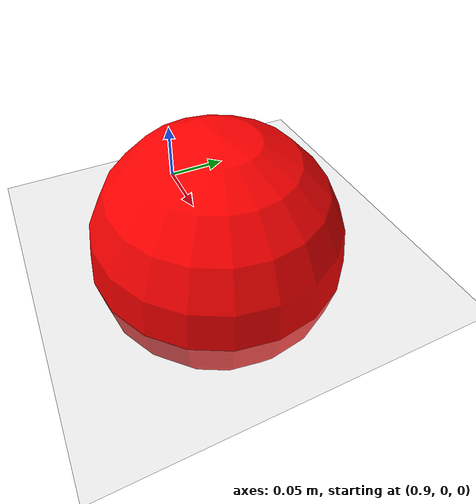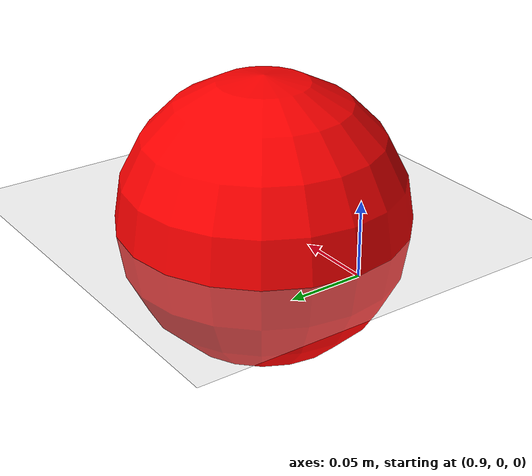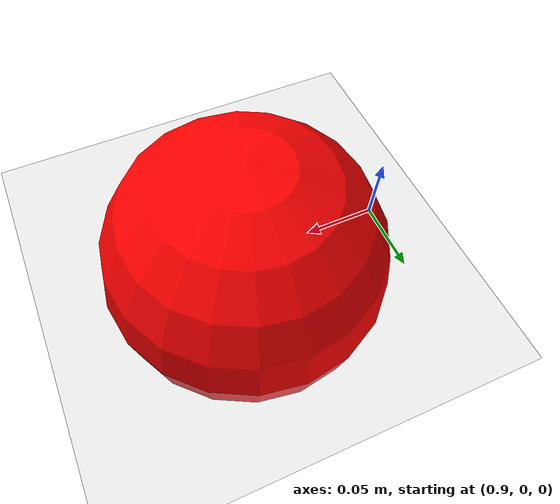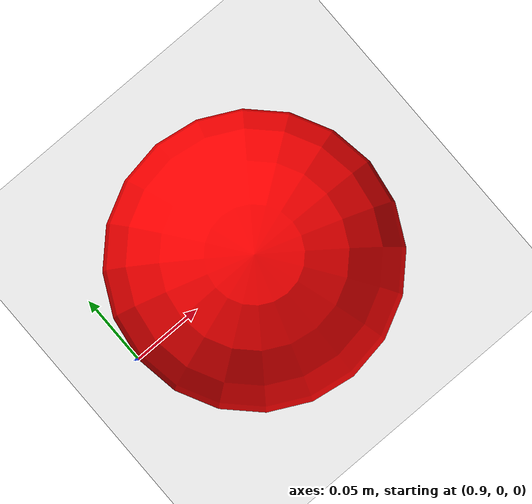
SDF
<?xml version="1.0"?>
<sdf version="1.8">
  <world name="basic">
    <physics name="1ms" type="ode">
      <max_step_size>0.001</max_step_size>
      <real_time_factor>1.0</real_time_factor>
    </physics>
    <plugin
      filename="gz-sim-physics-system"
      name="gz::sim::systems::Physics">
    </plugin>
    <plugin
      filename="gz-sim-user-commands-system"
      name="gz::sim::systems::UserCommands">
    </plugin>
    <plugin
      filename="gz-sim-scene-broadcaster-system"
      name="gz::sim::systems::SceneBroadcaster">
    </plugin>
    <plugin
      filename="gz-sim-contact-system"
      name="gz::sim::systems::Contact">
    </plugin>
    <plugin
      filename="gz-sim-imu-system"
      name="gz::sim::systems::Imu">
    </plugin>
    <plugin
      filename="gz-sim-air-pressure-system"
      name="gz::sim::systems::AirPressure">
    </plugin>
    <plugin
      filename="gz-sim-apply-link-wrench-system"
      name="gz::sim::systems::ApplyLinkWrench">
    </plugin>
    <plugin
      filename="gz-sim-navsat-system"
      name="gz::sim::systems::NavSat">
    </plugin>
    <plugin
      filename="gz-sim-sensors-system"
      name="gz::sim::systems::Sensors">
      <render_engine>ogre2</render_engine>
    </plugin>

    <!--light-->
    <light type="directional" name="sun">
      <cast_shadows>true</cast_shadows>
      <pose>0 0 10 0 0 0</pose>
      <diffuse>0.8 0.8 0.8 1</diffuse>
      <specular>0.2 0.2 0.2 1</specular>
      <attenuation>
        <range>1000</range>
        <constant>0.9</constant>
        <linear>0.01</linear>
        <quadratic>0.001</quadratic>
      </attenuation>
      <direction>-0.5 0.1 -0.9</direction>
    </light>

    <gui fullscreen="0">
      <!-- 3D scene -->
      <plugin filename="MinimalScene" name="3D View">
        <gz-gui>
          <title>3D View</title>
          <property type="bool" key="showTitleBar">false</property>
          <property type="string" key="state">docked</property>
        </gz-gui>

        <engine>ogre2</engine>
        <scene>scene</scene>
        <ambient_light>0.4 0.4 0.4</ambient_light>
        <background_color>0.8 0.8 0.8</background_color>
        <camera_pose>-6 0 6 0 0.5 0</camera_pose>
        <camera_clip>
          <near>0.25</near>
          <far>25000</far>
        </camera_clip>
      </plugin>

      <plugin filename="GzSceneManager" name="Scene Manager">
        <gz-gui>
          <property key="resizable" type="bool">false</property>
          <property key="width" type="double">5</property>
          <property key="height" type="double">5</property>
          <property key="state" type="string">floating</property>
          <property key="showTitleBar" type="bool">false</property>
        </gz-gui>
      </plugin>

      <!-- World control -->
      <plugin filename="WorldControl" name="World control">
        <gz-gui>
          <title>World control</title>
          <property type="bool" key="showTitleBar">false</property>
          <property type="bool" key="resizable">false</property>
          <property type="double" key="height">72</property>
          <property type="double" key="width">121</property>
          <property type="double" key="z">1</property>

          <property type="string" key="state">floating</property>
          <anchors target="3D View">
            <line own="left" target="left" />
            <line own="bottom" target="bottom" />
          </anchors>
        </gz-gui>

        <play_pause>true</play_pause>
        <step>true</step>
        <start_paused>true</start_paused>
        <service>/world/basic/control</service>
        <stats_topic>/world/basic/stats</stats_topic>
      </plugin>

      <!-- World statistics -->
      <plugin filename="WorldStats" name="World stats">
        <gz-gui>
          <title>World stats</title>
          <property type="bool" key="showTitleBar">false</property>
          <property type="bool" key="resizable">false</property>
          <property type="double" key="height">110</property>
          <property type="double" key="width">290</property>
          <property type="double" key="z">1</property>

          <property type="string" key="state">floating</property>
          <anchors target="3D View">
            <line own="right" target="right" />
            <line own="bottom" target="bottom" />
          </anchors>
        </gz-gui>

        <sim_time>true</sim_time>
        <real_time>true</real_time>
        <real_time_factor>true</real_time_factor>
        <iterations>true</iterations>
        <topic>/world/basic/stats</topic>
      </plugin>

      <!-- Entity tree -->
      <plugin filename="EntityTree" name="Entity tree">
      </plugin>

      <plugin filename="EntityContextMenuPlugin" name="Entity context menu">
        <gz-gui>
          <property key="state" type="string">floating</property>
          <property key="width" type="double">5</property>
          <property key="height" type="double">5</property>
          <property key="showTitleBar" type="bool">false</property>
        </gz-gui>
      </plugin>

      <plugin filename="InteractiveViewControl" name="Interactive view control">
        <gz-gui>
          <property key="resizable" type="bool">false</property>
          <property key="width" type="double">5</property>
          <property key="height" type="double">5</property>
          <property key="state" type="string">floating</property>
          <property key="showTitleBar" type="bool">false</property>
        </gz-gui>
      </plugin>

      <plugin filename="CameraTracking" name="Camera Tracking">
        <gz-gui>
          <property key="resizable" type="bool">false</property>
          <property key="width" type="double">5</property>
          <property key="height" type="double">5</property>
          <property key="state" type="string">floating</property>
          <property key="showTitleBar" type="bool">false</property>
        </gz-gui>
      </plugin>

      <plugin filename="MarkerManager" name="Marker manager">
        <gz-gui>
          <property key="resizable" type="bool">false</property>
          <property key="width" type="double">5</property>
          <property key="height" type="double">5</property>
          <property key="state" type="string">floating</property>
          <property key="showTitleBar" type="bool">false</property>
        </gz-gui>
      </plugin>

      <plugin filename="SelectEntities" name="Select Entities">
        <gz-gui>
          <anchors target="Select entities">
            <line own="right" target="right" />
            <line own="top" target="top" />
          </anchors>
          <property key="resizable" type="bool">false</property>
          <property key="width" type="double">5</property>
          <property key="height" type="double">5</property>
          <property key="state" type="string">floating</property>
          <property key="showTitleBar" type="bool">false</property>
        </gz-gui>
      </plugin>

      <plugin filename="VisualizationCapabilities" name="Visualization Capabilities">
        <gz-gui>
          <property key="resizable" type="bool">false</property>
          <property key="width" type="double">5</property>
          <property key="height" type="double">5</property>
          <property key="state" type="string">floating</property>
          <property key="showTitleBar" type="bool">false</property>
        </gz-gui>
      </plugin>

      <plugin filename="Spawn" name="Spawn Entities">
        <gz-gui>
          <anchors target="Select entities">
            <line own="right" target="right" />
            <line own="top" target="top" />
          </anchors>
          <property key="resizable" type="bool">false</property>
          <property key="width" type="double">5</property>
          <property key="height" type="double">5</property>
          <property key="state" type="string">floating</property>
          <property key="showTitleBar" type="bool">false</property>
        </gz-gui>
      </plugin>
    </gui>

    <model name="ground_plane">
      <static>true</static>
      <link name="link">
        <collision name="collision">
          <geometry>
            <plane>
              <normal>0 0 1</normal>
              <size>100 100</size>
            </plane>
          </geometry>
        </collision>
        <visual name="visual">
          <geometry>
            <plane>
              <normal>0 0 1</normal>
              <size>100 100</size>
            </plane>
          </geometry>
          <material>
            <ambient>0.8 0.8 0.8 1</ambient>
            <diffuse>0.8 0.8 0.8 1</diffuse>
            <specular>0.8 0.8 0.8 1</specular>
          </material>
        </visual>
      </link>
    </model>

    <include>
      <uri>
        model://ufo
      </uri>
      <pose>1.0 0 0 0 0 0</pose>
    </include>

    <spherical_coordinates>
      <surface_model>EARTH_WGS84</surface_model>
      <world_frame_orientation>ENU</world_frame_orientation>
      <latitude_deg>50.2911798711848</latitude_deg>
      <longitude_deg>18.680021938972036</longitude_deg>
    </spherical_coordinates>
  </world>
</sdf>

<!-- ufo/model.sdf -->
<sdf version="1.8">
  <model name="ufo">
    <pose>0 0 0 0 0 0</pose>
    <static>true</static>
    <link name="link">
      <collision name="collision">
        <geometry>
          <sphere>
            <radius>0.1</radius>
          </sphere>
        </geometry>
      </collision>
      <visual name="visual">
        <geometry>
          <sphere>
            <radius>0.1</radius>
          </sphere>
        </geometry>
        <material>
          <ambient>1.0 0.0 0.0 1</ambient>
          <diffuse>1.0 0.0 0.0 1</diffuse>
          <specular>1.0 0.0 0.0 1</specular>
        </material>
      </visual>
    </link>
  </model>
</sdf>
